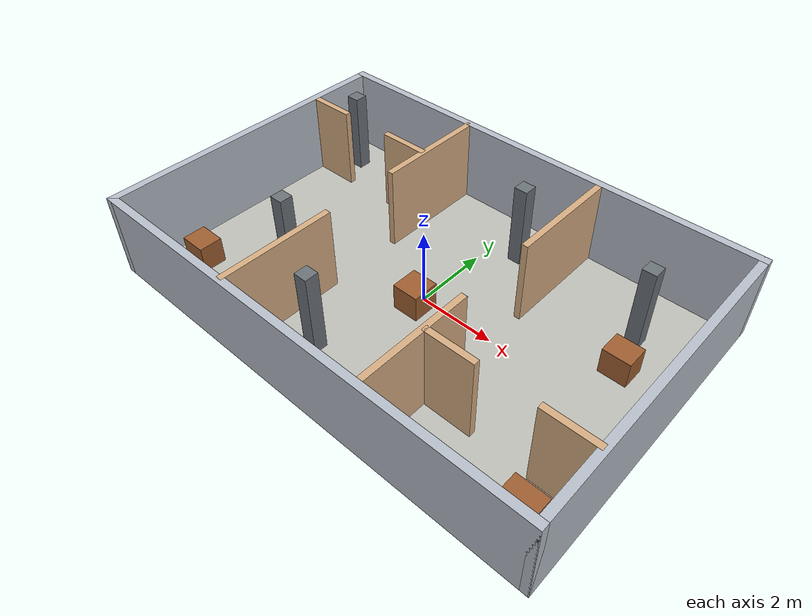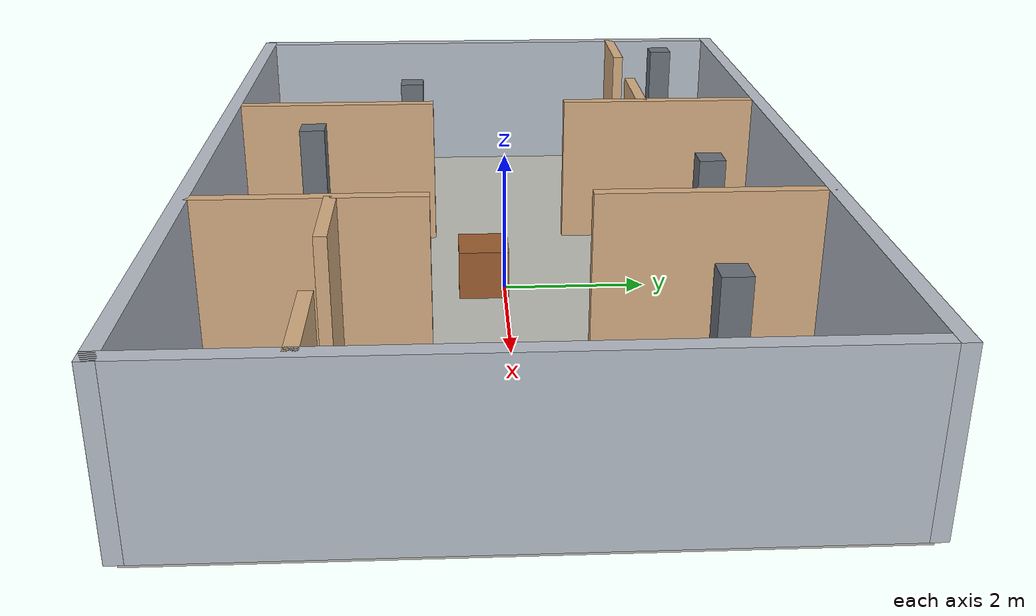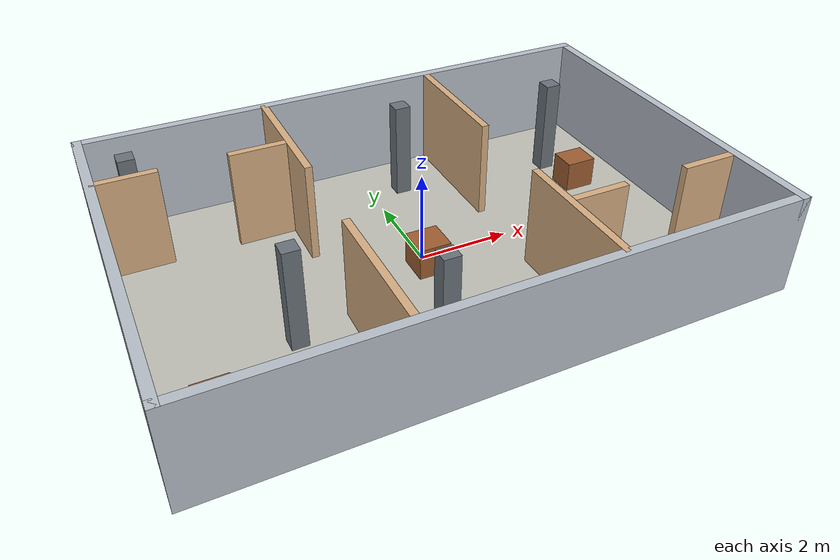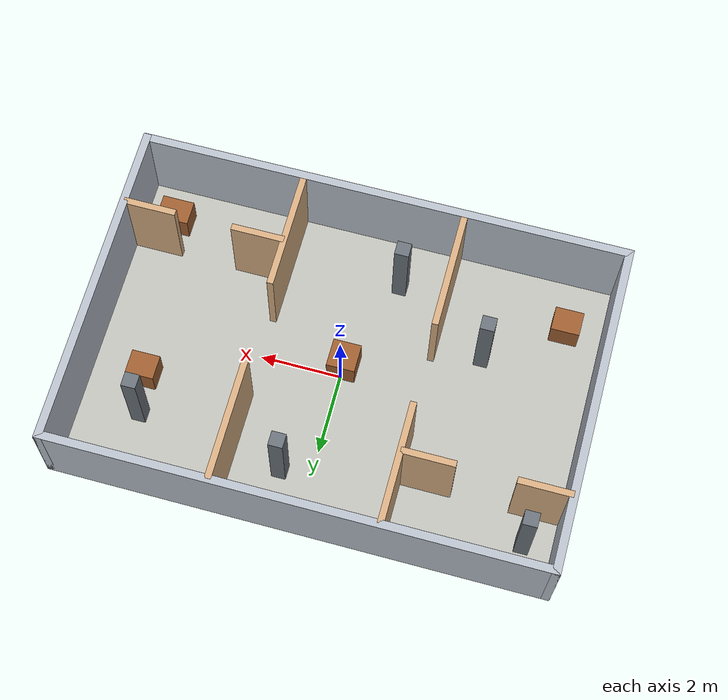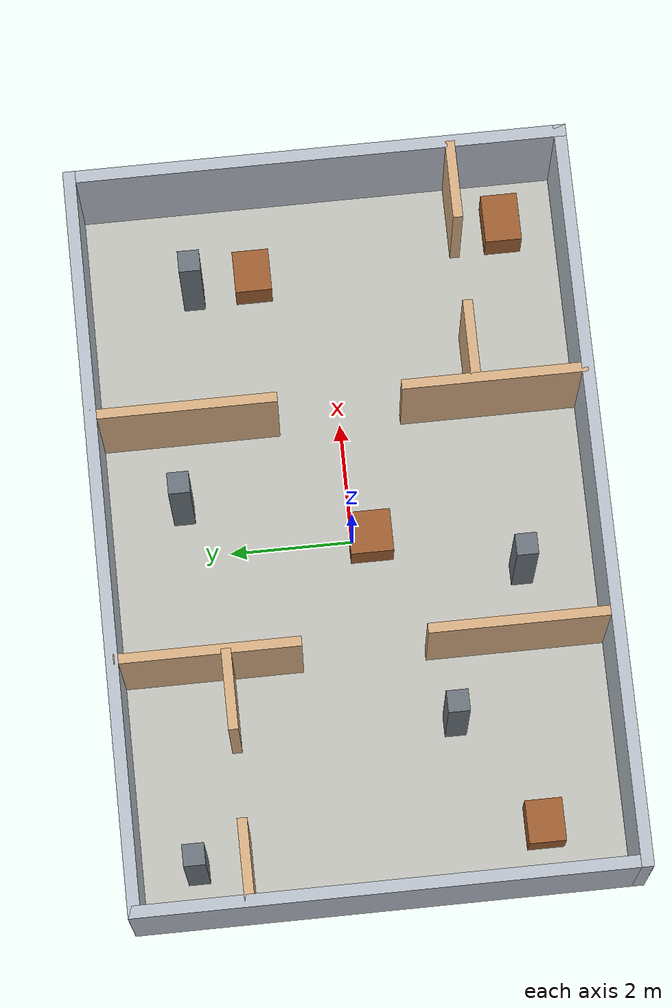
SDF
<?xml version='1.0' encoding='utf-8'?>
<sdf version="1.6">
  <world name="multiroom">
    <include>
      <uri>model://sun</uri>
    </include>
    <model name="floor">
      <static>true</static>
      <pose>0 0 -0.05 0 0 0</pose>
      <link name="body">
        <collision name="collision">
          <geometry>
            <box>
              <size>12 8 0.1</size>
            </box>
          </geometry>
        </collision>
        <visual name="visual">
          <geometry>
            <box>
              <size>12 8 0.1</size>
            </box>
          </geometry>
          <material>
            <ambient>.75 .75 .72 1</ambient>
            <diffuse>.75 .75 .72 1</diffuse>
          </material>
        </visual>
      </link>
    </model>
    <model name="north_wall">
      <static>true</static>
      <pose>0 4 1.1 0 0 0</pose>
      <link name="body">
        <collision name="collision">
          <geometry>
            <box>
              <size>12.2 0.2 2.2</size>
            </box>
          </geometry>
        </collision>
        <visual name="visual">
          <geometry>
            <box>
              <size>12.2 0.2 2.2</size>
            </box>
          </geometry>
          <material>
            <ambient>.72 .75 .79 1</ambient>
            <diffuse>.72 .75 .79 1</diffuse>
          </material>
        </visual>
      </link>
    </model>
    <model name="south_wall">
      <static>true</static>
      <pose>0 -4 1.1 0 0 0</pose>
      <link name="body">
        <collision name="collision">
          <geometry>
            <box>
              <size>12.2 0.2 2.2</size>
            </box>
          </geometry>
        </collision>
        <visual name="visual">
          <geometry>
            <box>
              <size>12.2 0.2 2.2</size>
            </box>
          </geometry>
          <material>
            <ambient>.72 .75 .79 1</ambient>
            <diffuse>.72 .75 .79 1</diffuse>
          </material>
        </visual>
      </link>
    </model>
    <model name="west_wall">
      <static>true</static>
      <pose>-6 0 1.1 0 0 0</pose>
      <link name="body">
        <collision name="collision">
          <geometry>
            <box>
              <size>0.2 8.2 2.2</size>
            </box>
          </geometry>
        </collision>
        <visual name="visual">
          <geometry>
            <box>
              <size>0.2 8.2 2.2</size>
            </box>
          </geometry>
          <material>
            <ambient>.72 .75 .79 1</ambient>
            <diffuse>.72 .75 .79 1</diffuse>
          </material>
        </visual>
      </link>
    </model>
    <model name="east_wall">
      <static>true</static>
      <pose>6 0 1.1 0 0 0</pose>
      <link name="body">
        <collision name="collision">
          <geometry>
            <box>
              <size>0.2 8.2 2.2</size>
            </box>
          </geometry>
        </collision>
        <visual name="visual">
          <geometry>
            <box>
              <size>0.2 8.2 2.2</size>
            </box>
          </geometry>
          <material>
            <ambient>.72 .75 .79 1</ambient>
            <diffuse>.72 .75 .79 1</diffuse>
          </material>
        </visual>
      </link>
    </model>
    <model name="left_partition_north">
      <static>true</static>
      <pose>-2 2.5 1.1 0 0 0</pose>
      <link name="body">
        <collision name="collision">
          <geometry>
            <box>
              <size>0.16 3 2.2</size>
            </box>
          </geometry>
        </collision>
        <visual name="visual">
          <geometry>
            <box>
              <size>0.16 3 2.2</size>
            </box>
          </geometry>
          <material>
            <ambient>.84 .68 .51 1</ambient>
            <diffuse>.84 .68 .51 1</diffuse>
          </material>
        </visual>
      </link>
    </model>
    <model name="left_partition_south">
      <static>true</static>
      <pose>-2 -2.5 1.1 0 0 0</pose>
      <link name="body">
        <collision name="collision">
          <geometry>
            <box>
              <size>0.16 3 2.2</size>
            </box>
          </geometry>
        </collision>
        <visual name="visual">
          <geometry>
            <box>
              <size>0.16 3 2.2</size>
            </box>
          </geometry>
          <material>
            <ambient>.84 .68 .51 1</ambient>
            <diffuse>.84 .68 .51 1</diffuse>
          </material>
        </visual>
      </link>
    </model>
    <model name="right_partition_north">
      <static>true</static>
      <pose>2 2.5 1.1 0 0 0</pose>
      <link name="body">
        <collision name="collision">
          <geometry>
            <box>
              <size>0.16 3 2.2</size>
            </box>
          </geometry>
        </collision>
        <visual name="visual">
          <geometry>
            <box>
              <size>0.16 3 2.2</size>
            </box>
          </geometry>
          <material>
            <ambient>.84 .68 .51 1</ambient>
            <diffuse>.84 .68 .51 1</diffuse>
          </material>
        </visual>
      </link>
    </model>
    <model name="right_partition_south">
      <static>true</static>
      <pose>2 -2.5 1.1 0 0 0</pose>
      <link name="body">
        <collision name="collision">
          <geometry>
            <box>
              <size>0.16 3 2.2</size>
            </box>
          </geometry>
        </collision>
        <visual name="visual">
          <geometry>
            <box>
              <size>0.16 3 2.2</size>
            </box>
          </geometry>
          <material>
            <ambient>.84 .68 .51 1</ambient>
            <diffuse>.84 .68 .51 1</diffuse>
          </material>
        </visual>
      </link>
    </model>
    <model name="bedroom_wall_west">
      <static>true</static>
      <pose>-5.35 2.2 1.1 0 0 0</pose>
      <link name="body">
        <collision name="collision">
          <geometry>
            <box>
              <size>1.3 0.16 2.2</size>
            </box>
          </geometry>
        </collision>
        <visual name="visual">
          <geometry>
            <box>
              <size>1.3 0.16 2.2</size>
            </box>
          </geometry>
          <material>
            <ambient>.84 .68 .51 1</ambient>
            <diffuse>.84 .68 .51 1</diffuse>
          </material>
        </visual>
      </link>
    </model>
    <model name="bedroom_wall_east">
      <static>true</static>
      <pose>-2.65 2.2 1.1 0 0 0</pose>
      <link name="body">
        <collision name="collision">
          <geometry>
            <box>
              <size>1.3 0.16 2.2</size>
            </box>
          </geometry>
        </collision>
        <visual name="visual">
          <geometry>
            <box>
              <size>1.3 0.16 2.2</size>
            </box>
          </geometry>
          <material>
            <ambient>.84 .68 .51 1</ambient>
            <diffuse>.84 .68 .51 1</diffuse>
          </material>
        </visual>
      </link>
    </model>
    <model name="storage_wall_west">
      <static>true</static>
      <pose>2.65 -2.2 1.1 0 0 0</pose>
      <link name="body">
        <collision name="collision">
          <geometry>
            <box>
              <size>1.3 0.16 2.2</size>
            </box>
          </geometry>
        </collision>
        <visual name="visual">
          <geometry>
            <box>
              <size>1.3 0.16 2.2</size>
            </box>
          </geometry>
          <material>
            <ambient>.84 .68 .51 1</ambient>
            <diffuse>.84 .68 .51 1</diffuse>
          </material>
        </visual>
      </link>
    </model>
    <model name="storage_wall_east">
      <static>true</static>
      <pose>5.35 -2.2 1.1 0 0 0</pose>
      <link name="body">
        <collision name="collision">
          <geometry>
            <box>
              <size>1.3 0.16 2.2</size>
            </box>
          </geometry>
        </collision>
        <visual name="visual">
          <geometry>
            <box>
              <size>1.3 0.16 2.2</size>
            </box>
          </geometry>
          <material>
            <ambient>.84 .68 .51 1</ambient>
            <diffuse>.84 .68 .51 1</diffuse>
          </material>
        </visual>
      </link>
    </model>
    <model name="bedroom_column">
      <static>true</static>
      <pose>-5.2 3 1.1 0 0 0</pose>
      <link name="body">
        <collision name="collision">
          <geometry>
            <box>
              <size>0.35 0.35 2.2</size>
            </box>
          </geometry>
        </collision>
        <visual name="visual">
          <geometry>
            <box>
              <size>0.35 0.35 2.2</size>
            </box>
          </geometry>
          <material>
            <ambient>.42 .45 .48 1</ambient>
            <diffuse>.42 .45 .48 1</diffuse>
          </material>
        </visual>
      </link>
    </model>
    <model name="living_column">
      <static>true</static>
      <pose>-3.2 -1.35 1.1 0 0 0</pose>
      <link name="body">
        <collision name="collision">
          <geometry>
            <box>
              <size>0.35 0.35 2.2</size>
            </box>
          </geometry>
        </collision>
        <visual name="visual">
          <geometry>
            <box>
              <size>0.35 0.35 2.2</size>
            </box>
          </geometry>
          <material>
            <ambient>.42 .45 .48 1</ambient>
            <diffuse>.42 .45 .48 1</diffuse>
          </material>
        </visual>
      </link>
    </model>
    <model name="central_column_north">
      <static>true</static>
      <pose>0.75 2.7 1.1 0 0 0</pose>
      <link name="body">
        <collision name="collision">
          <geometry>
            <box>
              <size>0.35 0.35 2.2</size>
            </box>
          </geometry>
        </collision>
        <visual name="visual">
          <geometry>
            <box>
              <size>0.35 0.35 2.2</size>
            </box>
          </geometry>
          <material>
            <ambient>.42 .45 .48 1</ambient>
            <diffuse>.42 .45 .48 1</diffuse>
          </material>
        </visual>
      </link>
    </model>
    <model name="central_column_south">
      <static>true</static>
      <pose>-0.8 -2.7 1.1 0 0 0</pose>
      <link name="body">
        <collision name="collision">
          <geometry>
            <box>
              <size>0.35 0.35 2.2</size>
            </box>
          </geometry>
        </collision>
        <visual name="visual">
          <geometry>
            <box>
              <size>0.35 0.35 2.2</size>
            </box>
          </geometry>
          <material>
            <ambient>.42 .45 .48 1</ambient>
            <diffuse>.42 .45 .48 1</diffuse>
          </material>
        </visual>
      </link>
    </model>
    <model name="study_column">
      <static>true</static>
      <pose>4.4 2.2 1.1 0 0 0</pose>
      <link name="body">
        <collision name="collision">
          <geometry>
            <box>
              <size>0.35 0.35 2.2</size>
            </box>
          </geometry>
        </collision>
        <visual name="visual">
          <geometry>
            <box>
              <size>0.35 0.35 2.2</size>
            </box>
          </geometry>
          <material>
            <ambient>.42 .45 .48 1</ambient>
            <diffuse>.42 .45 .48 1</diffuse>
          </material>
        </visual>
      </link>
    </model>
    <model name="living_box">
      <static>true</static>
      <pose>-5.0 -2.6 0.35 0 0 0</pose>
      <link name="body">
        <collision name="collision">
          <geometry>
            <box>
              <size>0.7 0.6 0.7</size>
            </box>
          </geometry>
        </collision>
        <visual name="visual">
          <geometry>
            <box>
              <size>0.7 0.6 0.7</size>
            </box>
          </geometry>
          <material>
            <ambient>.62 .37 .19 1</ambient>
            <diffuse>.62 .37 .19 1</diffuse>
          </material>
        </visual>
      </link>
    </model>
    <model name="hall_box">
      <static>true</static>
      <pose>0 -0.3 0.35 0 0 0</pose>
      <link name="body">
        <collision name="collision">
          <geometry>
            <box>
              <size>0.7 0.7 0.7</size>
            </box>
          </geometry>
        </collision>
        <visual name="visual">
          <geometry>
            <box>
              <size>0.7 0.7 0.7</size>
            </box>
          </geometry>
          <material>
            <ambient>.62 .37 .19 1</ambient>
            <diffuse>.62 .37 .19 1</diffuse>
          </material>
        </visual>
      </link>
    </model>
    <model name="study_box">
      <static>true</static>
      <pose>4.6 1.2 0.35 0 0 0</pose>
      <link name="body">
        <collision name="collision">
          <geometry>
            <box>
              <size>0.7 0.6 0.7</size>
            </box>
          </geometry>
        </collision>
        <visual name="visual">
          <geometry>
            <box>
              <size>0.7 0.6 0.7</size>
            </box>
          </geometry>
          <material>
            <ambient>.62 .37 .19 1</ambient>
            <diffuse>.62 .37 .19 1</diffuse>
          </material>
        </visual>
      </link>
    </model>
    <model name="storage_box">
      <static>true</static>
      <pose>5.1 -3 0.35 0 0 0</pose>
      <link name="body">
        <collision name="collision">
          <geometry>
            <box>
              <size>0.8 0.6 0.7</size>
            </box>
          </geometry>
        </collision>
        <visual name="visual">
          <geometry>
            <box>
              <size>0.8 0.6 0.7</size>
            </box>
          </geometry>
          <material>
            <ambient>.62 .37 .19 1</ambient>
            <diffuse>.62 .37 .19 1</diffuse>
          </material>
        </visual>
      </link>
    </model>
    <gui fullscreen="0">
      <camera name="user_camera">
        <pose>0 -14 13 0 0.7 1.57</pose>
        <view_controller>orbit</view_controller>
      </camera>
    </gui>
  </world>
</sdf>
